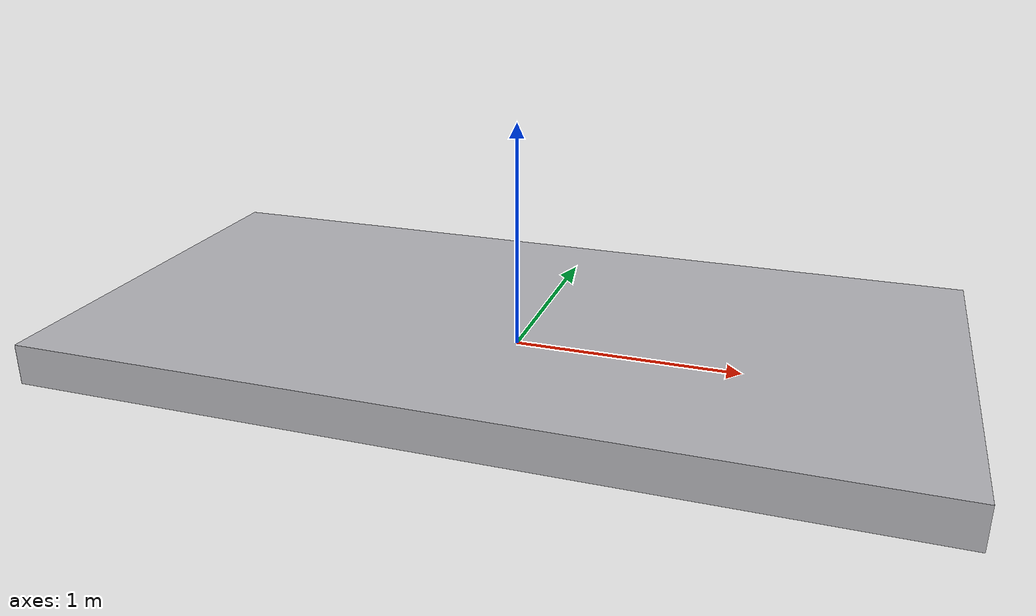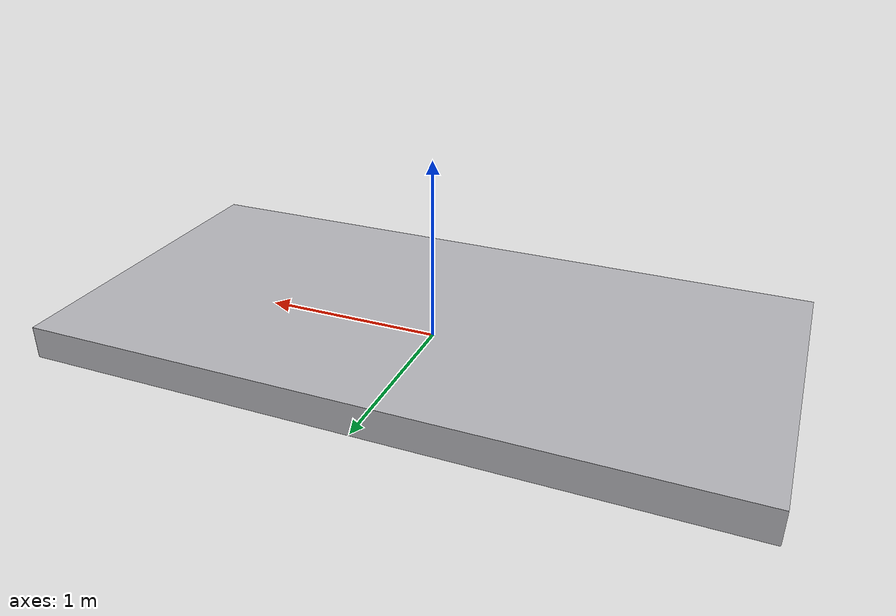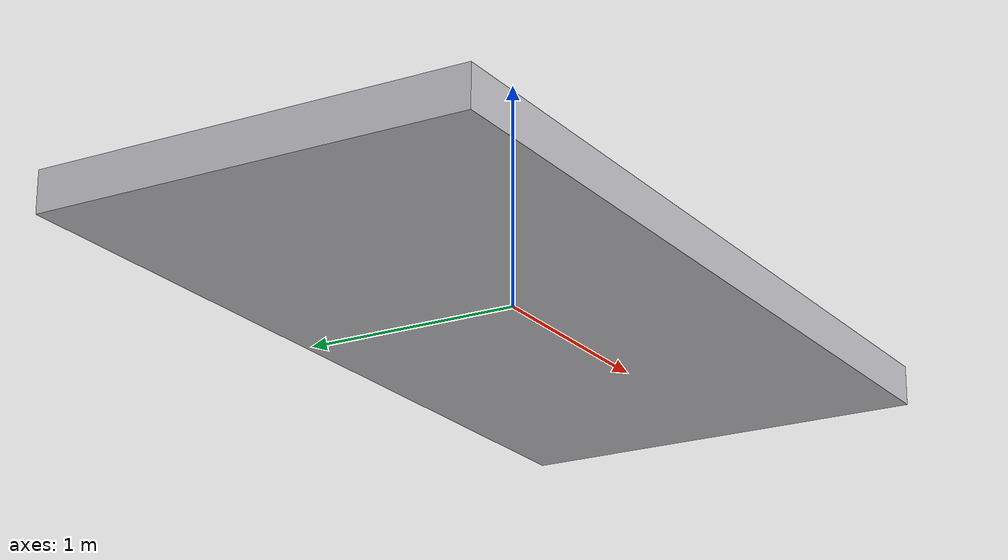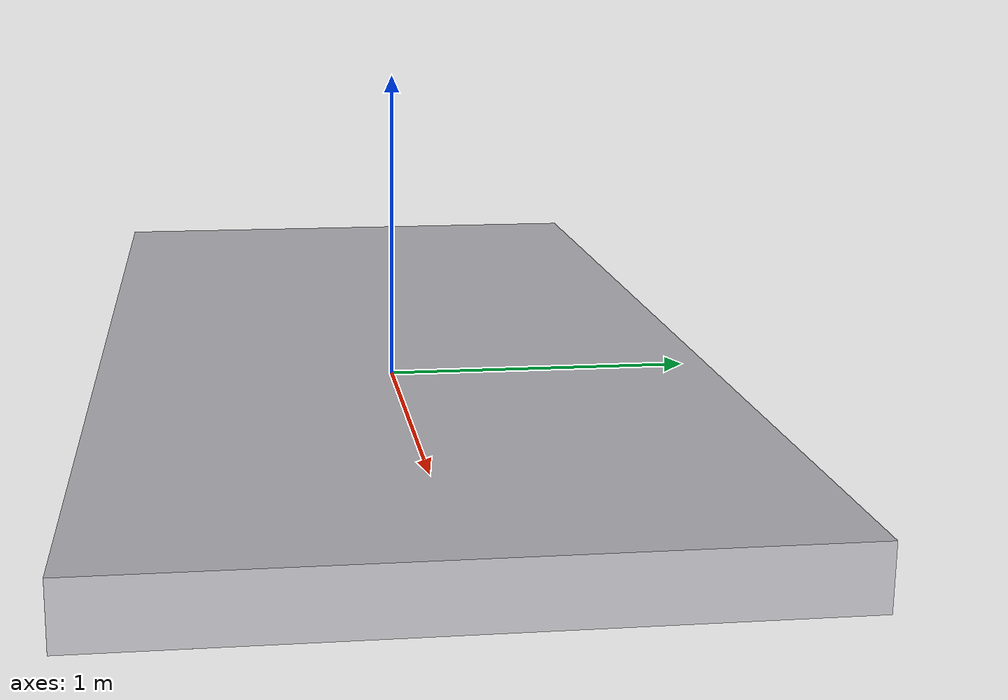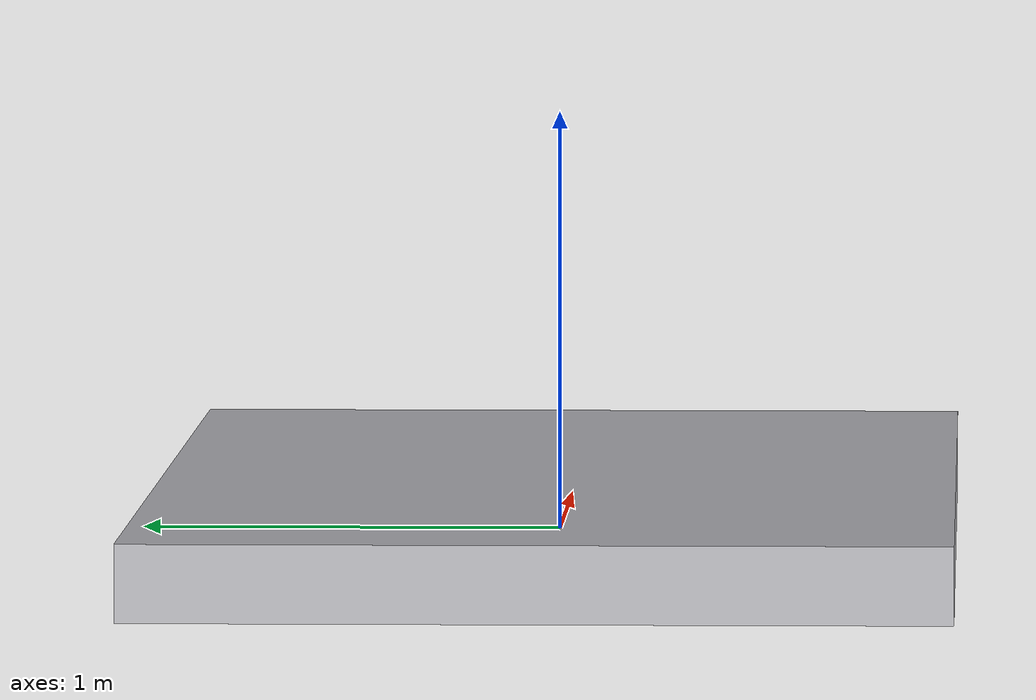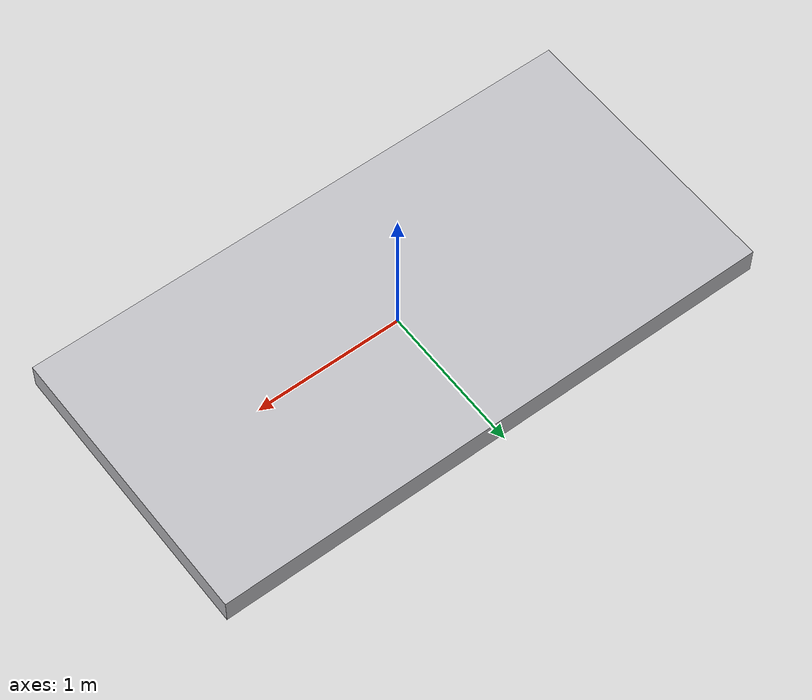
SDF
<?xml version='1.0' encoding='utf-8'?>
<sdf version="1.6">
  <model name="aws_robomaker_hospital_ramp_01">
    <static>true</static>
    <link name="link">
      <collision name="collision_1">
        <pose>0 0 0.04 0 0 0</pose>
        <geometry>
          <box>
            <size>3.8 1.9 0.18</size>
          </box>
        </geometry>
      </collision>
      <visual name="visual_1">
        <pose>0 0 0.04 0 0 0</pose>
        <geometry>
          <box>
            <size>3.8 1.9 0.18</size>
          </box>
        </geometry>
        <material>
          <ambient>0.74 0.74 0.76 1</ambient>
          <diffuse>0.74 0.74 0.76 1</diffuse>
          <specular>0.08 0.08 0.08 1</specular>
        </material>
      </visual>
    </link>
  </model>
</sdf>
